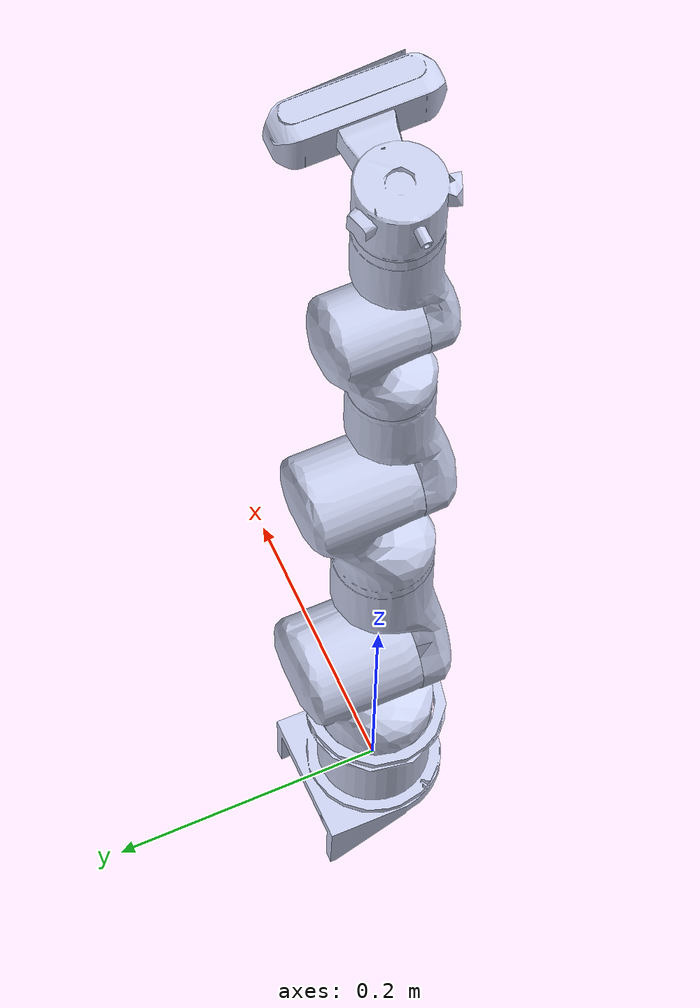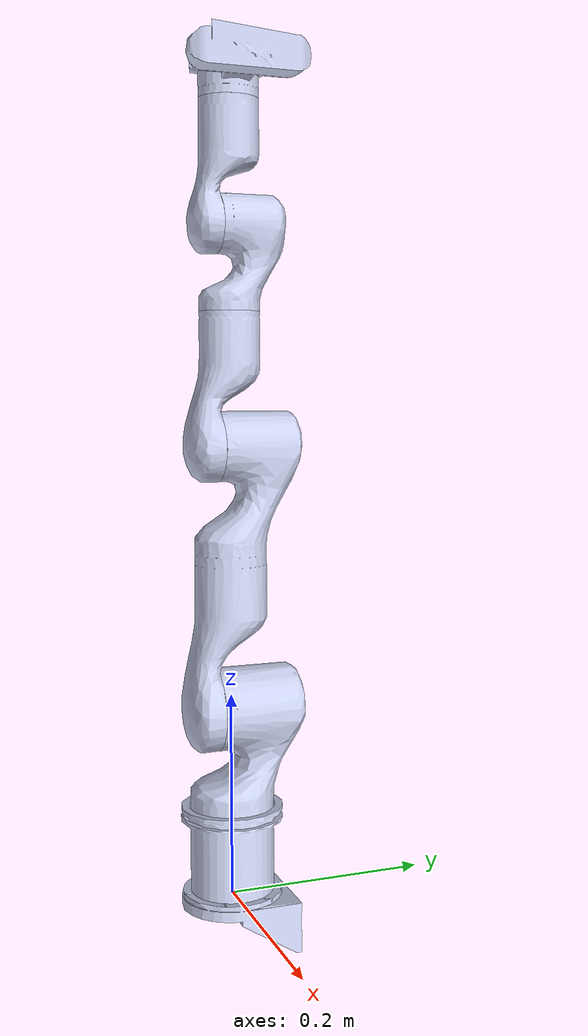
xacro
<?xml version="1.0"?>
<robot name="rm65_b_v_right" xmlns:xacro="http://www.ros.org/wiki/xacro">
  <!-- Define constants -->
  <xacro:property name="mesh_path" value="file://$(find dual_rm_65b_description)/meshes/" />
  <!-- Macro for visual and collision elements -->
  <xacro:macro name="visual_collision" params="mesh">
    <visual>
      <origin xyz="0 0 0" rpy="0 0 0" />
      <geometry>
        <mesh filename="${mesh_path}${mesh}" />
      </geometry>
      <material name="">
        <color rgba="0.79216 0.81961 0.93333 1" />
      </material>
    </visual>
    <collision>
      <origin xyz="0 0 0" rpy="0 0 0" />
      <geometry>
        <mesh filename="${mesh_path}${mesh}" />
      </geometry>
    </collision>
  </xacro:macro>
  <link
    name="r_base_link1">
    <inertial>
      <origin
        xyz="-4.8022E-05 0.0056915 0.024715"
        rpy="0 0 0" />
      <mass
        value="0.23441" />
      <inertia
        ixx="0.00027369"
        ixy="6.5702E-08"
        ixz="-3.2599E-09"
        iyy="0.000264"
        iyz="1.6355E-06"
        izz="0.00036679" />
    </inertial>
    <xacro:visual_collision mesh="r_base_link1.STL" />
  </link>
  <link
    name="r_link1">
    <inertial>
      <origin
        xyz="-2.8998E-07 0.021107 -0.025188"
        rpy="0 0 0" />
      <mass
        value="0.59353" />
      <inertia
        ixx="0.0012661"
        ixy="-5.3526E-09"
        ixz="-2.0479E-09"
        iyy="0.0011816"
        iyz="-0.00021118"
        izz="0.00056131" />
    </inertial>
    <xacro:visual_collision mesh="r_link1.STL" />
  </link>
  <link
    name="r_link2">
    <inertial>
      <origin
        xyz="0.15226 2.505E-07 -0.0062027"
        rpy="0 0 0" />
      <mass
        value="0.86416" />
      <inertia
        ixx="0.00063253"
        ixy="1.9052E-09"
        ixz="0.00042162"
        iyy="0.0020527"
        iyz="3.5874E-09"
        izz="0.0019528" />
    </inertial>
    <xacro:visual_collision mesh="r_link2.STL" />
  </link>
  <link
    name="r_link3">
    <inertial>
      <origin
        xyz="4.7421E-06 -0.059592 0.010268"
        rpy="0 0 0" />
      <mass
        value="0.28963" />
      <inertia
        ixx="0.00063737"
        ixy="-6.2554E-08"
        ixz="-3.5031E-08"
        iyy="0.00015649"
        iyz="-0.00014461"
        izz="0.00061418" />
    </inertial>
    <xacro:visual_collision mesh="r_link3.STL" />
  </link>
  <link
    name="r_link4">
    <inertial>
      <origin
        xyz="2.9088E-07 -0.018042 -0.02154"
        rpy="0 0 0" />
      <mass
        value="0.23942" />
      <inertia
        ixx="0.00028595"
        ixy="-2.3541E-09"
        ixz="1.386E-09"
        iyy="0.00026273"
        iyz="4.424E-05"
        izz="0.0001199" />
    </inertial>
    <xacro:visual_collision mesh="r_link4.STL" />
  </link>
  <link
    name="r_link5">
    <inertial>
      <origin
        xyz="4.2478E-06 -0.059381 0.007067"
        rpy="0 0 0" />
      <mass
        value="0.21879" />
      <inertia
        ixx="0.00035053"
        ixy="-2.8579E-08"
        ixz="-1.655E-08"
        iyy="0.00010492"
        iyz="-7.824E-05"
        izz="0.00033447" />
    </inertial>
    <xacro:visual_collision mesh="r_link5.STL" />
  </link>
  <link
    name="r_link6">
    <inertial>
      <origin
        xyz="-0.028764 5.1464E-06 0.02806"
        rpy="0 0 0" />
      <mass
        value="0.22147" />
      <inertia
        ixx="0.0001376"
        ixy="-5.7488E-08"
        ixz="1.6634E-05"
        iyy="0.00026855"
        iyz="-1.7799E-08"
        izz="0.00035277" />
    </inertial>
    <xacro:visual_collision mesh="r_link6.STL" />
  </link>

  <joint
    name="r_joint1"
    type="revolute">
    <origin
      xyz="0 0 0.187"
      rpy="0 0 0" />
    <parent
      link="r_base_link1" />
    <child
      link="r_link1" />
    <axis
      xyz="0 0 1" />
    <limit
      lower="-3.11"
      upper="3.11"
      effort="60"
      velocity="3.14" />
  </joint>
  <joint
    name="r_joint2"
    type="revolute">
    <origin
      xyz="0 0 0"
      rpy="1.5708 -1.5708 0" />
    <parent
      link="r_link1" />
    <child
      link="r_link2" />
    <axis
      xyz="0 0 1" />
    <limit
      lower="-2.27"
      upper="2.27"
      effort="60"
      velocity="3.14" />
  </joint>
  <joint
    name="r_joint3"
    type="revolute">
    <origin
      xyz="0.256 0 0"
      rpy="0 0 1.5708" />
    <parent
      link="r_link2" />
    <child
      link="r_link3" />
    <axis
      xyz="0 0 1" />
    <limit
      lower="-2.36"
      upper="2.36"
      effort="30"
      velocity="3.925" />
  </joint>
  <joint
    name="r_joint4"
    type="revolute">
    <origin
      xyz="0 -0.21 -0.00030007"
      rpy="1.5708 0 0" />
    <parent
      link="r_link3" />
    <child
      link="r_link4" />
    <axis
      xyz="0 0 1" />
    <limit
      lower="-3.11"
      upper="3.11"
      effort="10"
      velocity="3.925" />
  </joint>
  <joint
    name="r_joint5"
    type="revolute">
    <origin
      xyz="0 0 0"
      rpy="-1.5708 0 0" />
    <parent
      link="r_link4" />
    <child
      link="r_link5" />
    <axis
      xyz="0 0 1" />
    <limit
      lower="-2.23"
      upper="2.23"
      effort="10"
      velocity="3.925" />
  </joint>
  <joint
    name="r_joint6"
    type="revolute">
    <origin
      xyz="0 -0.11203 -0.00029971"
      rpy="1.5708 0 0" />
    <parent
      link="r_link5" />
    <child
      link="r_link6" />
    <axis
      xyz="0 0 1" />
    <limit
      lower="-6.28"
      upper="6.28"
      effort="10"
      velocity="3.925" />
  </joint>
</robot>
